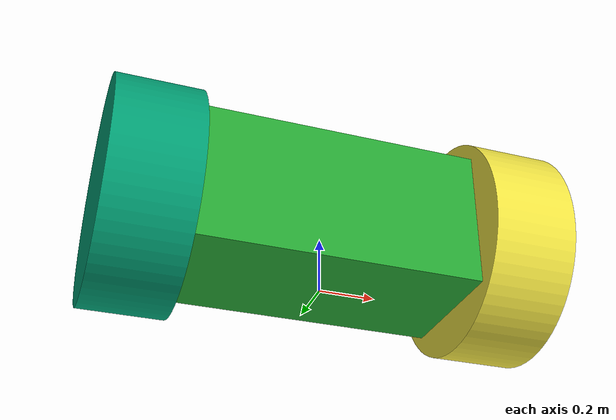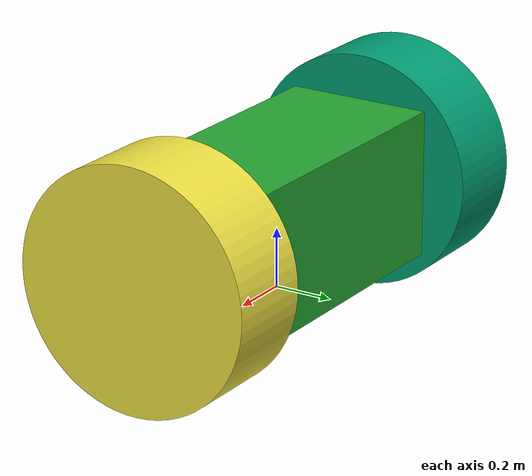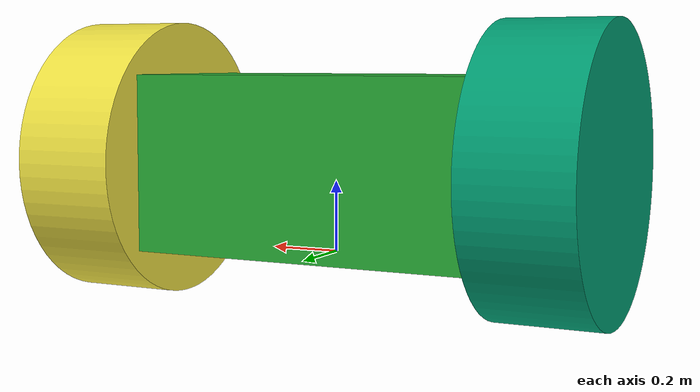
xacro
<?xml version="1.0"?>
<robot name="my_bot" xmlns:xacro="http://www.ros.org/wiki/xacro">
    <xacro:include filename="gazebo.xacro"/>
    <gazebo reference="chassis">
        <material>
            Gazebo/Green
        </material>
    </gazebo>

    <ros2_control name="GazeboSystem" type="system">
        <hardware>
            <plugin>
                gazebo_ros2_control/GazeboSystem
            </plugin>
        </hardware>
        <joint name="Revolute1">
            <command_interface name="velocity">
                <param name="min">-10</param>
                <param name="max">10</param>

            </command_interface>
            <state_interface name="velocity"/>
            <state_interface name="position"/>
        </joint>
        <joint name="Revolute2">
            <command_interface name="velocity">
                <param name="min">-10</param>
                <param name="max">10</param>

            </command_interface>
            <state_interface name="velocity"/>
            <state_interface name="position"/>
        </joint>

    </ros2_control>
    <gazebo>
        <plugin filename="libgazebo_ros2_control.so" name="gazebo_ros2_control" >
            <parameters>$(find basic_robot)/config/my_controllers.yaml</parameters>
        </plugin>
    </gazebo>
</robot>

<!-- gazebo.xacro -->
<robot name="my_bot" xmlns:xacro="http://www.ros.org/wiki/xacro">

  <link name="base_link">
    <origin xyz="0.0 0.0 0.0" rpy="0.0 0.0 0.0"/>
  </link>

  <joint name="base_joint" type="fixed">
    <parent link="base_link"/>
    <child link="chassis"/>
    <origin xyz="0 0 0" rpy="0 0 0"/>
  </joint>

  <link name="chassis">
    <visual>
      <origin xyz="0 0 0" rpy="0 0 0"/>
      <geometry>
        <mesh filename="file://$(find basic_robot)/meshes/chassis.stl" scale="0.1 0.1 0.1"/>
      </geometry>
    </visual>
    <collision>
      <origin xyz="0 0 0" rpy="0 0 0"/>
      <geometry>
        <mesh filename="file://$(find basic_robot)/meshes/chassis.stl" scale="0.1 0.1 0.1"/>
      </geometry>
    </collision>
    <inertial>
      <origin xyz="0.0 0.0 0.0" rpy="0 0 0"/>
      <mass value="10"/>
      <inertia  ixx="0.42" ixy="0" ixz="0" iyy="1.042" iyz="0" izz="1.042" />
    </inertial>
  </link>

  <link name="left_wheel_1">

    <inertial>
      <origin xyz="0 0 0" rpy="0 0 0"/>
      <mass value="5"/>
      <inertia  ixx="0.5327296181012307" ixy="0" ixz="0" iyy="0.3035629514345639" iyz="0" izz="0.30416666666666675" />
    </inertial>

    <visual>
      <origin xyz="0.5 -0.0 -0.25" rpy="0 0 0"/>
      <geometry>
        <mesh filename="file://$(find basic_robot)/meshes/left_wheel_1.stl" scale="0.1 0.1 0.1"/>
      </geometry>
    </visual>
    <collision>
      <origin xyz="0.5 -0.0 -0.25" rpy="0 0 0"/>
      <geometry>
        <mesh filename="file://$(find basic_robot)/meshes/left_wheel_1.stl" scale="0.1 0.1 0.1"/>
      </geometry>
    </collision>
  </link>

  <link name="right_wheel_1">

    <inertial>
      <origin xyz="0 0 0" rpy="0 0 0"/>
      <mass value="5"/>
      <inertia  ixx="0.5327295545949559" ixy="0" ixz="0" iyy="0.3035628879282892" iyz="0" izz="0.30416666666666675" />
    </inertial>

    <visual>
      <origin xyz="-0.5 -0.0 -0.25" rpy="0 0 0"/>
      <geometry>
        <mesh filename="file://$(find basic_robot)/meshes/right_wheel_1.stl" scale="0.1 0.1 0.1"/>
      </geometry>
    </visual>
    <collision>
      <origin xyz="-0.5 -0.0 -0.25" rpy="0 0 0"/>
      <geometry>
        <mesh filename="file://$(find basic_robot)/meshes/right_wheel_1.stl" scale="0.1 0.1 0.1"/>
      </geometry>
    </collision>
  </link>

  <joint name="Revolute1" type="continuous">
    <origin xyz="-0.5 0.0 0.25" rpy="0 0 0"/>
    <parent link="chassis"/>
    <child link="left_wheel_1"/>
    <axis xyz="-1.0 0.0 0.0"/>
  </joint>

  <joint name="Revolute2" type="continuous">
    <origin xyz="0.5 0.0 0.25" rpy="0 0 0"/>
    <parent link="chassis"/>
    <child link="right_wheel_1"/>
    <axis xyz="1.0 0.0 0.0"/>
  </joint>

  <gazebo reference="left_wheel_1">
    <mu1 value="0.001"/>
    <mu2 value="0.001"/>
  </gazebo>

  <gazebo reference="right_wheel_1">
    <mu1 value="0.001"/>
    <mu2 value="0.001"/>
  </gazebo>
</robot>
